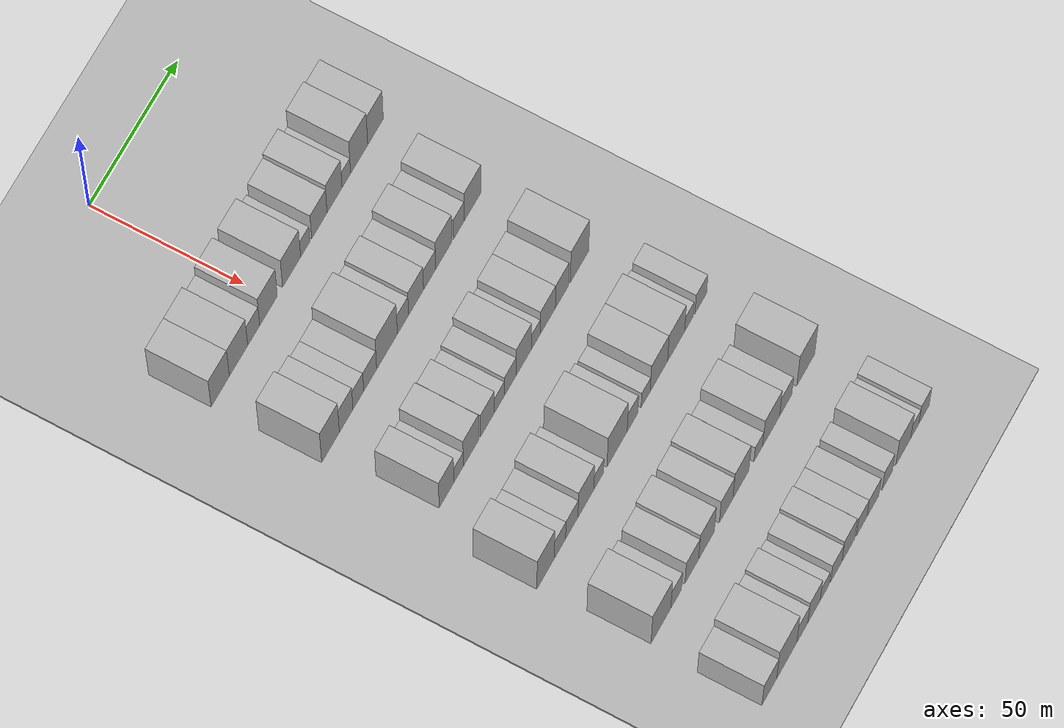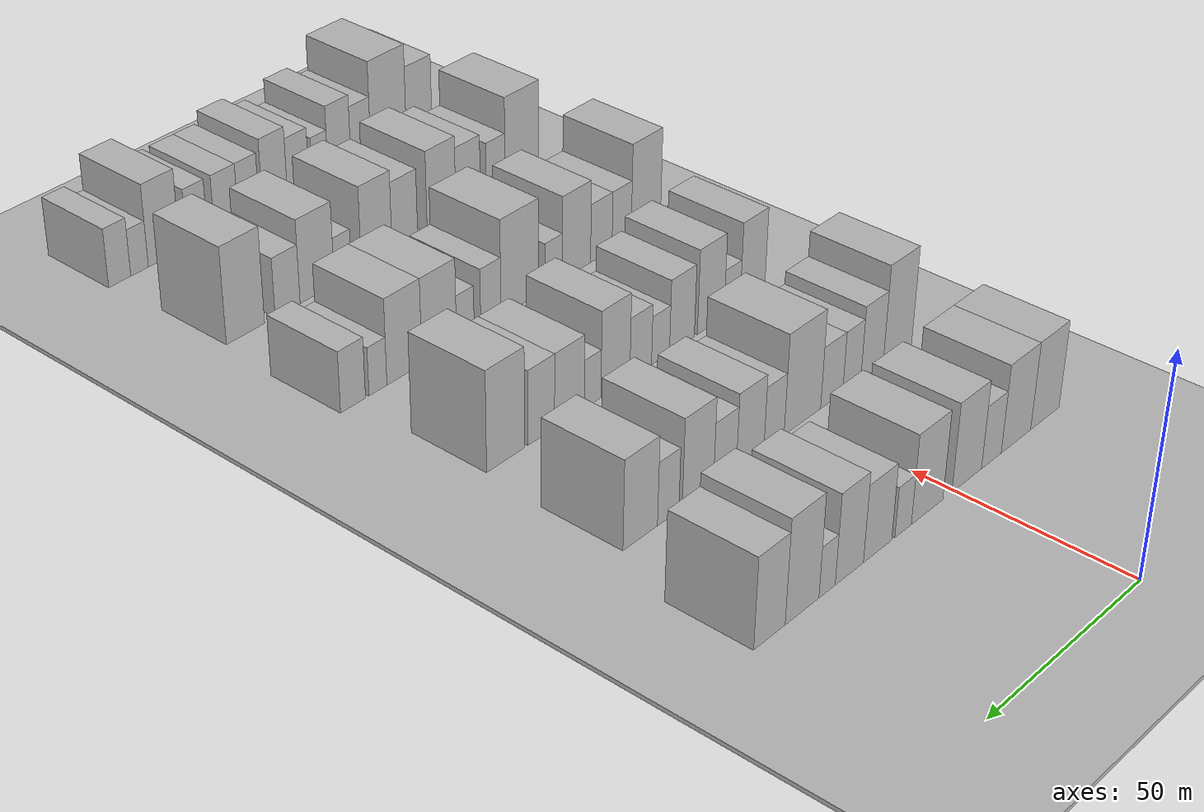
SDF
<sdf version="1.6">
 <world name="default">
  <include><name>ground_plane_1</name><uri>model://HANNAS_ground_plane</uri></include>
  <include>
   <name>ground_plane_2</name>
   <uri>model://HANNAS_ground_plane</uri>
   <pose>100 0 0  0 0 0</pose>
  </include>
  <model name="building_62">
   <static>1</static>
   <pose>50.0000 -31.1207 0 0.000000 0.000000 0.000000</pose>
   <link name="link">
    <pose>0 0 10.50 0 0 0</pose>
    <collision name="collision"><geometry><box><size>20.0000 10.3166 21.0000</size></box></geometry></collision>
    <visual name="visual">
     <cast_shadows>0</cast_shadows>
     <geometry><box><size>20.0000 10.3166 21.0000</size></box></geometry>
     <material>
      <script>
       <uri>model://HANNAS_wall/materials/scripts</uri>
       <uri>model://HANNAS_wall/materials/textures</uri>
       <name>vrc/HANNAS_wall</name>
      </script>
     </material>
    </visual>
   </link>
  </model>
  <model name="building_63">
   <static>1</static>
   <pose>50.0000 -20.7606 0 0.000000 0.000000 0.000000</pose>
   <link name="link">
    <pose>0 0 10.50 0 0 0</pose>
    <collision name="collision"><geometry><box><size>20.0000 10.4037 21.0000</size></box></geometry></collision>
    <visual name="visual">
     <cast_shadows>0</cast_shadows>
     <geometry><box><size>20.0000 10.4037 21.0000</size></box></geometry>
     <material>
      <script>
       <uri>model://HANNAS_wall/materials/scripts</uri>
       <uri>model://HANNAS_wall/materials/textures</uri>
       <name>vrc/HANNAS_wall</name>
      </script>
     </material>
    </visual>
   </link>
  </model>
  <model name="building_64">
   <static>1</static>
   <pose>50.0000 -12.1446 0 0.000000 0.000000 0.000000</pose>
   <link name="link">
    <pose>0 0 7.50 0 0 0</pose>
    <collision name="collision"><geometry><box><size>20.0000 6.8282 15.0000</size></box></geometry></collision>
    <visual name="visual">
     <cast_shadows>0</cast_shadows>
     <geometry><box><size>20.0000 6.8282 15.0000</size></box></geometry>
     <material>
      <script>
       <uri>model://HANNAS_wall/materials/scripts</uri>
       <uri>model://HANNAS_wall/materials/textures</uri>
       <name>vrc/HANNAS_wall</name>
      </script>
     </material>
    </visual>
   </link>
  </model>
  <model name="building_65">
   <static>1</static>
   <pose>50.0000 -3.7148 0 0.000000 0.000000 0.000000</pose>
   <link name="link">
    <pose>0 0 10.50 0 0 0</pose>
    <collision name="collision"><geometry><box><size>20.0000 10.0314 21.0000</size></box></geometry></collision>
    <visual name="visual">
     <cast_shadows>0</cast_shadows>
     <geometry><box><size>20.0000 10.0314 21.0000</size></box></geometry>
     <material>
      <script>
       <uri>model://HANNAS_wall/materials/scripts</uri>
       <uri>model://HANNAS_wall/materials/textures</uri>
       <name>vrc/HANNAS_wall</name>
      </script>
     </material>
    </visual>
   </link>
  </model>
  <model name="building_66">
   <static>1</static>
   <pose>50.0000 9.4654 0 0.000000 0.000000 0.000000</pose>
   <link name="link">
    <pose>0 0 10.50 0 0 0</pose>
    <collision name="collision"><geometry><box><size>20.0000 10.3291 21.0000</size></box></geometry></collision>
    <visual name="visual">
     <cast_shadows>0</cast_shadows>
     <geometry><box><size>20.0000 10.3291 21.0000</size></box></geometry>
     <material>
      <script>
       <uri>model://HANNAS_wall/materials/scripts</uri>
       <uri>model://HANNAS_wall/materials/textures</uri>
       <name>vrc/HANNAS_wall</name>
      </script>
     </material>
    </visual>
   </link>
  </model>
  <model name="building_67">
   <static>1</static>
   <pose>50.0000 17.2839 0 0.000000 0.000000 0.000000</pose>
   <link name="link">
    <pose>0 0 6.00 0 0 0</pose>
    <collision name="collision"><geometry><box><size>20.0000 5.3078 12.0000</size></box></geometry></collision>
    <visual name="visual">
     <cast_shadows>0</cast_shadows>
     <geometry><box><size>20.0000 5.3078 12.0000</size></box></geometry>
     <material>
      <script>
       <uri>model://HANNAS_wall/materials/scripts</uri>
       <uri>model://HANNAS_wall/materials/textures</uri>
       <name>vrc/HANNAS_wall</name>
      </script>
     </material>
    </visual>
   </link>
  </model>
  <model name="building_68">
   <static>1</static>
   <pose>50.0000 25.3735 0 0.000000 0.000000 0.000000</pose>
   <link name="link">
    <pose>0 0 9.00 0 0 0</pose>
    <collision name="collision"><geometry><box><size>20.0000 8.8715 18.0000</size></box></geometry></collision>
    <visual name="visual">
     <cast_shadows>0</cast_shadows>
     <geometry><box><size>20.0000 8.8715 18.0000</size></box></geometry>
     <material>
      <script>
       <uri>model://HANNAS_wall/materials/scripts</uri>
       <uri>model://HANNAS_wall/materials/textures</uri>
       <name>vrc/HANNAS_wall</name>
      </script>
     </material>
    </visual>
   </link>
  </model>
  <model name="building_69">
   <static>1</static>
   <pose>50.0000 34.1304 0 0.000000 0.000000 0.000000</pose>
   <link name="link">
    <pose>0 0 10.50 0 0 0</pose>
    <collision name="collision"><geometry><box><size>20.0000 8.6423 21.0000</size></box></geometry></collision>
    <visual name="visual">
     <cast_shadows>0</cast_shadows>
     <geometry><box><size>20.0000 8.6423 21.0000</size></box></geometry>
     <material>
      <script>
       <uri>model://HANNAS_wall/materials/scripts</uri>
       <uri>model://HANNAS_wall/materials/textures</uri>
       <name>vrc/HANNAS_wall</name>
      </script>
     </material>
    </visual>
   </link>
  </model>
  <model name="building_70">
   <static>1</static>
   <pose>50.0000 40.9056 0 0.000000 0.000000 0.000000</pose>
   <link name="link">
    <pose>0 0 6.00 0 0 0</pose>
    <collision name="collision"><geometry><box><size>20.0000 4.9082 12.0000</size></box></geometry></collision>
    <visual name="visual">
     <cast_shadows>0</cast_shadows>
     <geometry><box><size>20.0000 4.9082 12.0000</size></box></geometry>
     <material>
      <script>
       <uri>model://HANNAS_wall/materials/scripts</uri>
       <uri>model://HANNAS_wall/materials/textures</uri>
       <name>vrc/HANNAS_wall</name>
      </script>
     </material>
    </visual>
   </link>
  </model>
  <model name="building_71">
   <static>1</static>
   <pose>50.0000 48.3373 0 0.000000 0.000000 0.000000</pose>
   <link name="link">
    <pose>0 0 12.00 0 0 0</pose>
    <collision name="collision"><geometry><box><size>20.0000 9.9551 24.0000</size></box></geometry></collision>
    <visual name="visual">
     <cast_shadows>0</cast_shadows>
     <geometry><box><size>20.0000 9.9551 24.0000</size></box></geometry>
     <material>
      <script>
       <uri>model://HANNAS_wall/materials/scripts</uri>
       <uri>model://HANNAS_wall/materials/textures</uri>
       <name>vrc/HANNAS_wall</name>
      </script>
     </material>
    </visual>
   </link>
  </model>
  <model name="building_72">
   <static>1</static>
   <pose>50.0000 57.8455 0 0.000000 0.000000 0.000000</pose>
   <link name="link">
    <pose>0 0 10.50 0 0 0</pose>
    <collision name="collision"><geometry><box><size>20.0000 9.0613 21.0000</size></box></geometry></collision>
    <visual name="visual">
     <cast_shadows>0</cast_shadows>
     <geometry><box><size>20.0000 9.0613 21.0000</size></box></geometry>
     <material>
      <script>
       <uri>model://HANNAS_wall/materials/scripts</uri>
       <uri>model://HANNAS_wall/materials/textures</uri>
       <name>vrc/HANNAS_wall</name>
      </script>
     </material>
    </visual>
   </link>
  </model>
  <model name="building_189">
   <static>1</static>
   <pose>85.0000 -30.8297 0 0.000000 0.000000 0.000000</pose>
   <link name="link">
    <pose>0 0 12.00 0 0 0</pose>
    <collision name="collision"><geometry><box><size>20.0000 10.0494 24.0000</size></box></geometry></collision>
    <visual name="visual">
     <cast_shadows>0</cast_shadows>
     <geometry><box><size>20.0000 10.0494 24.0000</size></box></geometry>
     <material>
      <script>
       <uri>model://HANNAS_wall/materials/scripts</uri>
       <uri>model://HANNAS_wall/materials/textures</uri>
       <name>vrc/HANNAS_wall</name>
      </script>
     </material>
    </visual>
   </link>
  </model>
  <model name="building_190">
   <static>1</static>
   <pose>85.0000 -21.9327 0 0.000000 0.000000 0.000000</pose>
   <link name="link">
    <pose>0 0 9.00 0 0 0</pose>
    <collision name="collision"><geometry><box><size>20.0000 7.7446 18.0000</size></box></geometry></collision>
    <visual name="visual">
     <cast_shadows>0</cast_shadows>
     <geometry><box><size>20.0000 7.7446 18.0000</size></box></geometry>
     <material>
      <script>
       <uri>model://HANNAS_wall/materials/scripts</uri>
       <uri>model://HANNAS_wall/materials/textures</uri>
       <name>vrc/HANNAS_wall</name>
      </script>
     </material>
    </visual>
   </link>
  </model>
  <model name="building_191">
   <static>1</static>
   <pose>85.0000 -14.9793 0 0.000000 0.000000 0.000000</pose>
   <link name="link">
    <pose>0 0 7.50 0 0 0</pose>
    <collision name="collision"><geometry><box><size>20.0000 6.1621 15.0000</size></box></geometry></collision>
    <visual name="visual">
     <cast_shadows>0</cast_shadows>
     <geometry><box><size>20.0000 6.1621 15.0000</size></box></geometry>
     <material>
      <script>
       <uri>model://HANNAS_wall/materials/scripts</uri>
       <uri>model://HANNAS_wall/materials/textures</uri>
       <name>vrc/HANNAS_wall</name>
      </script>
     </material>
    </visual>
   </link>
  </model>
  <model name="building_192">
   <static>1</static>
   <pose>85.0000 -8.1989 0 0.000000 0.000000 0.000000</pose>
   <link name="link">
    <pose>0 0 7.50 0 0 0</pose>
    <collision name="collision"><geometry><box><size>20.0000 7.3987 15.0000</size></box></geometry></collision>
    <visual name="visual">
     <cast_shadows>0</cast_shadows>
     <geometry><box><size>20.0000 7.3987 15.0000</size></box></geometry>
     <material>
      <script>
       <uri>model://HANNAS_wall/materials/scripts</uri>
       <uri>model://HANNAS_wall/materials/textures</uri>
       <name>vrc/HANNAS_wall</name>
      </script>
     </material>
    </visual>
   </link>
  </model>
  <model name="building_193">
   <static>1</static>
   <pose>85.0000 1.4661 0 0.000000 0.000000 0.000000</pose>
   <link name="link">
    <pose>0 0 12.00 0 0 0</pose>
    <collision name="collision"><geometry><box><size>20.0000 11.9313 24.0000</size></box></geometry></collision>
    <visual name="visual">
     <cast_shadows>0</cast_shadows>
     <geometry><box><size>20.0000 11.9313 24.0000</size></box></geometry>
     <material>
      <script>
       <uri>model://HANNAS_wall/materials/scripts</uri>
       <uri>model://HANNAS_wall/materials/textures</uri>
       <name>vrc/HANNAS_wall</name>
      </script>
     </material>
    </visual>
   </link>
  </model>
  <model name="building_194">
   <static>1</static>
   <pose>85.0000 10.6550 0 0.000000 0.000000 0.000000</pose>
   <link name="link">
    <pose>0 0 7.50 0 0 0</pose>
    <collision name="collision"><geometry><box><size>20.0000 6.4465 15.0000</size></box></geometry></collision>
    <visual name="visual">
     <cast_shadows>0</cast_shadows>
     <geometry><box><size>20.0000 6.4465 15.0000</size></box></geometry>
     <material>
      <script>
       <uri>model://HANNAS_wall/materials/scripts</uri>
       <uri>model://HANNAS_wall/materials/textures</uri>
       <name>vrc/HANNAS_wall</name>
      </script>
     </material>
    </visual>
   </link>
  </model>
  <model name="building_195">
   <static>1</static>
   <pose>85.0000 18.1993 0 0.000000 0.000000 0.000000</pose>
   <link name="link">
    <pose>0 0 9.00 0 0 0</pose>
    <collision name="collision"><geometry><box><size>20.0000 8.6422 18.0000</size></box></geometry></collision>
    <visual name="visual">
     <cast_shadows>0</cast_shadows>
     <geometry><box><size>20.0000 8.6422 18.0000</size></box></geometry>
     <material>
      <script>
       <uri>model://HANNAS_wall/materials/scripts</uri>
       <uri>model://HANNAS_wall/materials/textures</uri>
       <name>vrc/HANNAS_wall</name>
      </script>
     </material>
    </visual>
   </link>
  </model>
  <model name="building_196">
   <static>1</static>
   <pose>85.0000 26.0441 0 0.000000 0.000000 0.000000</pose>
   <link name="link">
    <pose>0 0 7.50 0 0 0</pose>
    <collision name="collision"><geometry><box><size>20.0000 7.0473 15.0000</size></box></geometry></collision>
    <visual name="visual">
     <cast_shadows>0</cast_shadows>
     <geometry><box><size>20.0000 7.0473 15.0000</size></box></geometry>
     <material>
      <script>
       <uri>model://HANNAS_wall/materials/scripts</uri>
       <uri>model://HANNAS_wall/materials/textures</uri>
       <name>vrc/HANNAS_wall</name>
      </script>
     </material>
    </visual>
   </link>
  </model>
  <model name="building_197">
   <static>1</static>
   <pose>85.0000 34.2518 0 0.000000 0.000000 0.000000</pose>
   <link name="link">
    <pose>0 0 10.50 0 0 0</pose>
    <collision name="collision"><geometry><box><size>20.0000 9.3681 21.0000</size></box></geometry></collision>
    <visual name="visual">
     <cast_shadows>0</cast_shadows>
     <geometry><box><size>20.0000 9.3681 21.0000</size></box></geometry>
     <material>
      <script>
       <uri>model://HANNAS_wall/materials/scripts</uri>
       <uri>model://HANNAS_wall/materials/textures</uri>
       <name>vrc/HANNAS_wall</name>
      </script>
     </material>
    </visual>
   </link>
  </model>
  <model name="building_198">
   <static>1</static>
   <pose>85.0000 43.0728 0 0.000000 0.000000 0.000000</pose>
   <link name="link">
    <pose>0 0 7.50 0 0 0</pose>
    <collision name="collision"><geometry><box><size>20.0000 6.2740 15.0000</size></box></geometry></collision>
    <visual name="visual">
     <cast_shadows>0</cast_shadows>
     <geometry><box><size>20.0000 6.2740 15.0000</size></box></geometry>
     <material>
      <script>
       <uri>model://HANNAS_wall/materials/scripts</uri>
       <uri>model://HANNAS_wall/materials/textures</uri>
       <name>vrc/HANNAS_wall</name>
      </script>
     </material>
    </visual>
   </link>
  </model>
  <model name="building_199">
   <static>1</static>
   <pose>85.0000 51.1776 0 0.000000 0.000000 0.000000</pose>
   <link name="link">
    <pose>0 0 10.50 0 0 0</pose>
    <collision name="collision"><geometry><box><size>20.0000 9.9356 21.0000</size></box></geometry></collision>
    <visual name="visual">
     <cast_shadows>0</cast_shadows>
     <geometry><box><size>20.0000 9.9356 21.0000</size></box></geometry>
     <material>
      <script>
       <uri>model://HANNAS_wall/materials/scripts</uri>
       <uri>model://HANNAS_wall/materials/textures</uri>
       <name>vrc/HANNAS_wall</name>
      </script>
     </material>
    </visual>
   </link>
  </model>
  <model name="building_308">
   <static>1</static>
   <pose>120.0000 -27.6909 0 0.000000 0.000000 0.000000</pose>
   <link name="link">
    <pose>0 0 10.50 0 0 0</pose>
    <collision name="collision"><geometry><box><size>20.0000 8.4739 21.0000</size></box></geometry></collision>
    <visual name="visual">
     <cast_shadows>0</cast_shadows>
     <geometry><box><size>20.0000 8.4739 21.0000</size></box></geometry>
     <material>
      <script>
       <uri>model://HANNAS_wall/materials/scripts</uri>
       <uri>model://HANNAS_wall/materials/textures</uri>
       <name>vrc/HANNAS_wall</name>
      </script>
     </material>
    </visual>
   </link>
  </model>
  <model name="building_309">
   <static>1</static>
   <pose>120.0000 -20.7469 0 0.000000 0.000000 0.000000</pose>
   <link name="link">
    <pose>0 0 6.00 0 0 0</pose>
    <collision name="collision"><geometry><box><size>20.0000 5.4141 12.0000</size></box></geometry></collision>
    <visual name="visual">
     <cast_shadows>0</cast_shadows>
     <geometry><box><size>20.0000 5.4141 12.0000</size></box></geometry>
     <material>
      <script>
       <uri>model://HANNAS_wall/materials/scripts</uri>
       <uri>model://HANNAS_wall/materials/textures</uri>
       <name>vrc/HANNAS_wall</name>
      </script>
     </material>
    </visual>
   </link>
  </model>
  <model name="building_310">
   <static>1</static>
   <pose>120.0000 -13.6113 0 0.000000 0.000000 0.000000</pose>
   <link name="link">
    <pose>0 0 10.50 0 0 0</pose>
    <collision name="collision"><geometry><box><size>20.0000 8.8572 21.0000</size></box></geometry></collision>
    <visual name="visual">
     <cast_shadows>0</cast_shadows>
     <geometry><box><size>20.0000 8.8572 21.0000</size></box></geometry>
     <material>
      <script>
       <uri>model://HANNAS_wall/materials/scripts</uri>
       <uri>model://HANNAS_wall/materials/textures</uri>
       <name>vrc/HANNAS_wall</name>
      </script>
     </material>
    </visual>
   </link>
  </model>
  <model name="building_311">
   <static>1</static>
   <pose>120.0000 -4.1378 0 0.000000 0.000000 0.000000</pose>
   <link name="link">
    <pose>0 0 9.00 0 0 0</pose>
    <collision name="collision"><geometry><box><size>20.0000 8.0897 18.0000</size></box></geometry></collision>
    <visual name="visual">
     <cast_shadows>0</cast_shadows>
     <geometry><box><size>20.0000 8.0897 18.0000</size></box></geometry>
     <material>
      <script>
       <uri>model://HANNAS_wall/materials/scripts</uri>
       <uri>model://HANNAS_wall/materials/textures</uri>
       <name>vrc/HANNAS_wall</name>
      </script>
     </material>
    </visual>
   </link>
  </model>
  <model name="building_312">
   <static>1</static>
   <pose>120.0000 2.7823 0 0.000000 0.000000 0.000000</pose>
   <link name="link">
    <pose>0 0 6.00 0 0 0</pose>
    <collision name="collision"><geometry><box><size>20.0000 5.7506 12.0000</size></box></geometry></collision>
    <visual name="visual">
     <cast_shadows>0</cast_shadows>
     <geometry><box><size>20.0000 5.7506 12.0000</size></box></geometry>
     <material>
      <script>
       <uri>model://HANNAS_wall/materials/scripts</uri>
       <uri>model://HANNAS_wall/materials/textures</uri>
       <name>vrc/HANNAS_wall</name>
      </script>
     </material>
    </visual>
   </link>
  </model>
  <model name="building_313">
   <static>1</static>
   <pose>120.0000 9.0841 0 0.000000 0.000000 0.000000</pose>
   <link name="link">
    <pose>0 0 7.50 0 0 0</pose>
    <collision name="collision"><geometry><box><size>20.0000 6.8529 15.0000</size></box></geometry></collision>
    <visual name="visual">
     <cast_shadows>0</cast_shadows>
     <geometry><box><size>20.0000 6.8529 15.0000</size></box></geometry>
     <material>
      <script>
       <uri>model://HANNAS_wall/materials/scripts</uri>
       <uri>model://HANNAS_wall/materials/textures</uri>
       <name>vrc/HANNAS_wall</name>
      </script>
     </material>
    </visual>
   </link>
  </model>
  <model name="building_314">
   <static>1</static>
   <pose>120.0000 16.9854 0 0.000000 0.000000 0.000000</pose>
   <link name="link">
    <pose>0 0 10.50 0 0 0</pose>
    <collision name="collision"><geometry><box><size>20.0000 8.9498 21.0000</size></box></geometry></collision>
    <visual name="visual">
     <cast_shadows>0</cast_shadows>
     <geometry><box><size>20.0000 8.9498 21.0000</size></box></geometry>
     <material>
      <script>
       <uri>model://HANNAS_wall/materials/scripts</uri>
       <uri>model://HANNAS_wall/materials/textures</uri>
       <name>vrc/HANNAS_wall</name>
      </script>
     </material>
    </visual>
   </link>
  </model>
  <model name="building_315">
   <static>1</static>
   <pose>120.0000 23.9823 0 0.000000 0.000000 0.000000</pose>
   <link name="link">
    <pose>0 0 6.00 0 0 0</pose>
    <collision name="collision"><geometry><box><size>20.0000 5.0441 12.0000</size></box></geometry></collision>
    <visual name="visual">
     <cast_shadows>0</cast_shadows>
     <geometry><box><size>20.0000 5.0441 12.0000</size></box></geometry>
     <material>
      <script>
       <uri>model://HANNAS_wall/materials/scripts</uri>
       <uri>model://HANNAS_wall/materials/textures</uri>
       <name>vrc/HANNAS_wall</name>
      </script>
     </material>
    </visual>
   </link>
  </model>
  <model name="building_316">
   <static>1</static>
   <pose>120.0000 30.9605 0 0.000000 0.000000 0.000000</pose>
   <link name="link">
    <pose>0 0 9.00 0 0 0</pose>
    <collision name="collision"><geometry><box><size>20.0000 8.9124 18.0000</size></box></geometry></collision>
    <visual name="visual">
     <cast_shadows>0</cast_shadows>
     <geometry><box><size>20.0000 8.9124 18.0000</size></box></geometry>
     <material>
      <script>
       <uri>model://HANNAS_wall/materials/scripts</uri>
       <uri>model://HANNAS_wall/materials/textures</uri>
       <name>vrc/HANNAS_wall</name>
      </script>
     </material>
    </visual>
   </link>
  </model>
  <model name="building_317">
   <static>1</static>
   <pose>120.0000 39.2919 0 0.000000 0.000000 0.000000</pose>
   <link name="link">
    <pose>0 0 9.00 0 0 0</pose>
    <collision name="collision"><geometry><box><size>20.0000 7.7504 18.0000</size></box></geometry></collision>
    <visual name="visual">
     <cast_shadows>0</cast_shadows>
     <geometry><box><size>20.0000 7.7504 18.0000</size></box></geometry>
     <material>
      <script>
       <uri>model://HANNAS_wall/materials/scripts</uri>
       <uri>model://HANNAS_wall/materials/textures</uri>
       <name>vrc/HANNAS_wall</name>
      </script>
     </material>
    </visual>
   </link>
  </model>
  <model name="building_318">
   <static>1</static>
   <pose>120.0000 49.5906 0 0.000000 0.000000 0.000000</pose>
   <link name="link">
    <pose>0 0 12.00 0 0 0</pose>
    <collision name="collision"><geometry><box><size>20.0000 10.8471 24.0000</size></box></geometry></collision>
    <visual name="visual">
     <cast_shadows>0</cast_shadows>
     <geometry><box><size>20.0000 10.8471 24.0000</size></box></geometry>
     <material>
      <script>
       <uri>model://HANNAS_wall/materials/scripts</uri>
       <uri>model://HANNAS_wall/materials/textures</uri>
       <name>vrc/HANNAS_wall</name>
      </script>
     </material>
    </visual>
   </link>
  </model>
  <model name="building_436">
   <static>1</static>
   <pose>155.0000 -34.6547 0 0.000000 0.000000 0.000000</pose>
   <link name="link">
    <pose>0 0 12.00 0 0 0</pose>
    <collision name="collision"><geometry><box><size>20.0000 10.0847 24.0000</size></box></geometry></collision>
    <visual name="visual">
     <cast_shadows>0</cast_shadows>
     <geometry><box><size>20.0000 10.0847 24.0000</size></box></geometry>
     <material>
      <script>
       <uri>model://HANNAS_wall/materials/scripts</uri>
       <uri>model://HANNAS_wall/materials/textures</uri>
       <name>vrc/HANNAS_wall</name>
      </script>
     </material>
    </visual>
   </link>
  </model>
  <model name="building_437">
   <static>1</static>
   <pose>155.0000 -26.3721 0 0.000000 0.000000 0.000000</pose>
   <link name="link">
    <pose>0 0 7.50 0 0 0</pose>
    <collision name="collision"><geometry><box><size>20.0000 6.4805 15.0000</size></box></geometry></collision>
    <visual name="visual">
     <cast_shadows>0</cast_shadows>
     <geometry><box><size>20.0000 6.4805 15.0000</size></box></geometry>
     <material>
      <script>
       <uri>model://HANNAS_wall/materials/scripts</uri>
       <uri>model://HANNAS_wall/materials/textures</uri>
       <name>vrc/HANNAS_wall</name>
      </script>
     </material>
    </visual>
   </link>
  </model>
  <model name="building_438">
   <static>1</static>
   <pose>155.0000 -19.5611 0 0.000000 0.000000 0.000000</pose>
   <link name="link">
    <pose>0 0 7.50 0 0 0</pose>
    <collision name="collision"><geometry><box><size>20.0000 7.1415 15.0000</size></box></geometry></collision>
    <visual name="visual">
     <cast_shadows>0</cast_shadows>
     <geometry><box><size>20.0000 7.1415 15.0000</size></box></geometry>
     <material>
      <script>
       <uri>model://HANNAS_wall/materials/scripts</uri>
       <uri>model://HANNAS_wall/materials/textures</uri>
       <name>vrc/HANNAS_wall</name>
      </script>
     </material>
    </visual>
   </link>
  </model>
  <model name="building_439">
   <static>1</static>
   <pose>155.0000 -11.3887 0 0.000000 0.000000 0.000000</pose>
   <link name="link">
    <pose>0 0 10.50 0 0 0</pose>
    <collision name="collision"><geometry><box><size>20.0000 9.2032 21.0000</size></box></geometry></collision>
    <visual name="visual">
     <cast_shadows>0</cast_shadows>
     <geometry><box><size>20.0000 9.2032 21.0000</size></box></geometry>
     <material>
      <script>
       <uri>model://HANNAS_wall/materials/scripts</uri>
       <uri>model://HANNAS_wall/materials/textures</uri>
       <name>vrc/HANNAS_wall</name>
      </script>
     </material>
    </visual>
   </link>
  </model>
  <model name="building_440">
   <static>1</static>
   <pose>155.0000 -3.9426 0 0.000000 0.000000 0.000000</pose>
   <link name="link">
    <pose>0 0 6.00 0 0 0</pose>
    <collision name="collision"><geometry><box><size>20.0000 5.6891 12.0000</size></box></geometry></collision>
    <visual name="visual">
     <cast_shadows>0</cast_shadows>
     <geometry><box><size>20.0000 5.6891 12.0000</size></box></geometry>
     <material>
      <script>
       <uri>model://HANNAS_wall/materials/scripts</uri>
       <uri>model://HANNAS_wall/materials/textures</uri>
       <name>vrc/HANNAS_wall</name>
      </script>
     </material>
    </visual>
   </link>
  </model>
  <model name="building_441">
   <static>1</static>
   <pose>155.0000 6.7967 0 0.000000 0.000000 0.000000</pose>
   <link name="link">
    <pose>0 0 12.00 0 0 0</pose>
    <collision name="collision"><geometry><box><size>20.0000 11.7895 24.0000</size></box></geometry></collision>
    <visual name="visual">
     <cast_shadows>0</cast_shadows>
     <geometry><box><size>20.0000 11.7895 24.0000</size></box></geometry>
     <material>
      <script>
       <uri>model://HANNAS_wall/materials/scripts</uri>
       <uri>model://HANNAS_wall/materials/textures</uri>
       <name>vrc/HANNAS_wall</name>
      </script>
     </material>
    </visual>
   </link>
  </model>
  <model name="building_442">
   <static>1</static>
   <pose>155.0000 15.7808 0 0.000000 0.000000 0.000000</pose>
   <link name="link">
    <pose>0 0 7.50 0 0 0</pose>
    <collision name="collision"><geometry><box><size>20.0000 6.1787 15.0000</size></box></geometry></collision>
    <visual name="visual">
     <cast_shadows>0</cast_shadows>
     <geometry><box><size>20.0000 6.1787 15.0000</size></box></geometry>
     <material>
      <script>
       <uri>model://HANNAS_wall/materials/scripts</uri>
       <uri>model://HANNAS_wall/materials/textures</uri>
       <name>vrc/HANNAS_wall</name>
      </script>
     </material>
    </visual>
   </link>
  </model>
  <model name="building_443">
   <static>1</static>
   <pose>155.0000 23.5342 0 0.000000 0.000000 0.000000</pose>
   <link name="link">
    <pose>0 0 6.00 0 0 0</pose>
    <collision name="collision"><geometry><box><size>20.0000 5.3281 12.0000</size></box></geometry></collision>
    <visual name="visual">
     <cast_shadows>0</cast_shadows>
     <geometry><box><size>20.0000 5.3281 12.0000</size></box></geometry>
     <material>
      <script>
       <uri>model://HANNAS_wall/materials/scripts</uri>
       <uri>model://HANNAS_wall/materials/textures</uri>
       <name>vrc/HANNAS_wall</name>
      </script>
     </material>
    </visual>
   </link>
  </model>
  <model name="building_444">
   <static>1</static>
   <pose>155.0000 31.3321 0 0.000000 0.000000 0.000000</pose>
   <link name="link">
    <pose>0 0 10.50 0 0 0</pose>
    <collision name="collision"><geometry><box><size>20.0000 10.2677 21.0000</size></box></geometry></collision>
    <visual name="visual">
     <cast_shadows>0</cast_shadows>
     <geometry><box><size>20.0000 10.2677 21.0000</size></box></geometry>
     <material>
      <script>
       <uri>model://HANNAS_wall/materials/scripts</uri>
       <uri>model://HANNAS_wall/materials/textures</uri>
       <name>vrc/HANNAS_wall</name>
      </script>
     </material>
    </visual>
   </link>
  </model>
  <model name="building_445">
   <static>1</static>
   <pose>155.0000 41.5204 0 0.000000 0.000000 0.000000</pose>
   <link name="link">
    <pose>0 0 10.50 0 0 0</pose>
    <collision name="collision"><geometry><box><size>20.0000 10.1089 21.0000</size></box></geometry></collision>
    <visual name="visual">
     <cast_shadows>0</cast_shadows>
     <geometry><box><size>20.0000 10.1089 21.0000</size></box></geometry>
     <material>
      <script>
       <uri>model://HANNAS_wall/materials/scripts</uri>
       <uri>model://HANNAS_wall/materials/textures</uri>
       <name>vrc/HANNAS_wall</name>
      </script>
     </material>
    </visual>
   </link>
  </model>
  <model name="building_446">
   <static>1</static>
   <pose>155.0000 49.1126 0 0.000000 0.000000 0.000000</pose>
   <link name="link">
    <pose>0 0 6.00 0 0 0</pose>
    <collision name="collision"><geometry><box><size>20.0000 5.0754 12.0000</size></box></geometry></collision>
    <visual name="visual">
     <cast_shadows>0</cast_shadows>
     <geometry><box><size>20.0000 5.0754 12.0000</size></box></geometry>
     <material>
      <script>
       <uri>model://HANNAS_wall/materials/scripts</uri>
       <uri>model://HANNAS_wall/materials/textures</uri>
       <name>vrc/HANNAS_wall</name>
      </script>
     </material>
    </visual>
   </link>
  </model>
  <model name="building_447">
   <static>1</static>
   <pose>155.0000 56.1278 0 0.000000 0.000000 0.000000</pose>
   <link name="link">
    <pose>0 0 7.50 0 0 0</pose>
    <collision name="collision"><geometry><box><size>20.0000 6.9552 15.0000</size></box></geometry></collision>
    <visual name="visual">
     <cast_shadows>0</cast_shadows>
     <geometry><box><size>20.0000 6.9552 15.0000</size></box></geometry>
     <material>
      <script>
       <uri>model://HANNAS_wall/materials/scripts</uri>
       <uri>model://HANNAS_wall/materials/textures</uri>
       <name>vrc/HANNAS_wall</name>
      </script>
     </material>
    </visual>
   </link>
  </model>
  <model name="building_563">
   <static>1</static>
   <pose>190.0000 -32.7372 0 0.000000 0.000000 0.000000</pose>
   <link name="link">
    <pose>0 0 12.00 0 0 0</pose>
    <collision name="collision"><geometry><box><size>20.0000 11.4989 24.0000</size></box></geometry></collision>
    <visual name="visual">
     <cast_shadows>0</cast_shadows>
     <geometry><box><size>20.0000 11.4989 24.0000</size></box></geometry>
     <material>
      <script>
       <uri>model://HANNAS_wall/materials/scripts</uri>
       <uri>model://HANNAS_wall/materials/textures</uri>
       <name>vrc/HANNAS_wall</name>
      </script>
     </material>
    </visual>
   </link>
  </model>
  <model name="building_564">
   <static>1</static>
   <pose>190.0000 -23.8855 0 0.000000 0.000000 0.000000</pose>
   <link name="link">
    <pose>0 0 7.50 0 0 0</pose>
    <collision name="collision"><geometry><box><size>20.0000 6.2045 15.0000</size></box></geometry></collision>
    <visual name="visual">
     <cast_shadows>0</cast_shadows>
     <geometry><box><size>20.0000 6.2045 15.0000</size></box></geometry>
     <material>
      <script>
       <uri>model://HANNAS_wall/materials/scripts</uri>
       <uri>model://HANNAS_wall/materials/textures</uri>
       <name>vrc/HANNAS_wall</name>
      </script>
     </material>
    </visual>
   </link>
  </model>
  <model name="building_565">
   <static>1</static>
   <pose>190.0000 -14.7822 0 0.000000 0.000000 0.000000</pose>
   <link name="link">
    <pose>0 0 9.00 0 0 0</pose>
    <collision name="collision"><geometry><box><size>20.0000 8.0021 18.0000</size></box></geometry></collision>
    <visual name="visual">
     <cast_shadows>0</cast_shadows>
     <geometry><box><size>20.0000 8.0021 18.0000</size></box></geometry>
     <material>
      <script>
       <uri>model://HANNAS_wall/materials/scripts</uri>
       <uri>model://HANNAS_wall/materials/textures</uri>
       <name>vrc/HANNAS_wall</name>
      </script>
     </material>
    </visual>
   </link>
  </model>
  <model name="building_566">
   <static>1</static>
   <pose>190.0000 -6.1752 0 0.000000 0.000000 0.000000</pose>
   <link name="link">
    <pose>0 0 10.50 0 0 0</pose>
    <collision name="collision"><geometry><box><size>20.0000 9.2118 21.0000</size></box></geometry></collision>
    <visual name="visual">
     <cast_shadows>0</cast_shadows>
     <geometry><box><size>20.0000 9.2118 21.0000</size></box></geometry>
     <material>
      <script>
       <uri>model://HANNAS_wall/materials/scripts</uri>
       <uri>model://HANNAS_wall/materials/textures</uri>
       <name>vrc/HANNAS_wall</name>
      </script>
     </material>
    </visual>
   </link>
  </model>
  <model name="building_567">
   <static>1</static>
   <pose>190.0000 5.4253 0 0.000000 0.000000 0.000000</pose>
   <link name="link">
    <pose>0 0 9.00 0 0 0</pose>
    <collision name="collision"><geometry><box><size>20.0000 7.9892 18.0000</size></box></geometry></collision>
    <visual name="visual">
     <cast_shadows>0</cast_shadows>
     <geometry><box><size>20.0000 7.9892 18.0000</size></box></geometry>
     <material>
      <script>
       <uri>model://HANNAS_wall/materials/scripts</uri>
       <uri>model://HANNAS_wall/materials/textures</uri>
       <name>vrc/HANNAS_wall</name>
      </script>
     </material>
    </visual>
   </link>
  </model>
  <model name="building_568">
   <static>1</static>
   <pose>190.0000 14.1275 0 0.000000 0.000000 0.000000</pose>
   <link name="link">
    <pose>0 0 10.50 0 0 0</pose>
    <collision name="collision"><geometry><box><size>20.0000 9.4152 21.0000</size></box></geometry></collision>
    <visual name="visual">
     <cast_shadows>0</cast_shadows>
     <geometry><box><size>20.0000 9.4152 21.0000</size></box></geometry>
     <material>
      <script>
       <uri>model://HANNAS_wall/materials/scripts</uri>
       <uri>model://HANNAS_wall/materials/textures</uri>
       <name>vrc/HANNAS_wall</name>
      </script>
     </material>
    </visual>
   </link>
  </model>
  <model name="building_569">
   <static>1</static>
   <pose>190.0000 24.3949 0 0.000000 0.000000 0.000000</pose>
   <link name="link">
    <pose>0 0 6.00 0 0 0</pose>
    <collision name="collision"><geometry><box><size>20.0000 5.1196 12.0000</size></box></geometry></collision>
    <visual name="visual">
     <cast_shadows>0</cast_shadows>
     <geometry><box><size>20.0000 5.1196 12.0000</size></box></geometry>
     <material>
      <script>
       <uri>model://HANNAS_wall/materials/scripts</uri>
       <uri>model://HANNAS_wall/materials/textures</uri>
       <name>vrc/HANNAS_wall</name>
      </script>
     </material>
    </visual>
   </link>
  </model>
  <model name="building_570">
   <static>1</static>
   <pose>190.0000 32.0069 0 0.000000 0.000000 0.000000</pose>
   <link name="link">
    <pose>0 0 10.50 0 0 0</pose>
    <collision name="collision"><geometry><box><size>20.0000 10.1043 21.0000</size></box></geometry></collision>
    <visual name="visual">
     <cast_shadows>0</cast_shadows>
     <geometry><box><size>20.0000 10.1043 21.0000</size></box></geometry>
     <material>
      <script>
       <uri>model://HANNAS_wall/materials/scripts</uri>
       <uri>model://HANNAS_wall/materials/textures</uri>
       <name>vrc/HANNAS_wall</name>
      </script>
     </material>
    </visual>
   </link>
  </model>
  <model name="building_571">
   <static>1</static>
   <pose>190.0000 40.6629 0 0.000000 0.000000 0.000000</pose>
   <link name="link">
    <pose>0 0 7.50 0 0 0</pose>
    <collision name="collision"><geometry><box><size>20.0000 7.2077 15.0000</size></box></geometry></collision>
    <visual name="visual">
     <cast_shadows>0</cast_shadows>
     <geometry><box><size>20.0000 7.2077 15.0000</size></box></geometry>
     <material>
      <script>
       <uri>model://HANNAS_wall/materials/scripts</uri>
       <uri>model://HANNAS_wall/materials/textures</uri>
       <name>vrc/HANNAS_wall</name>
      </script>
     </material>
    </visual>
   </link>
  </model>
  <model name="building_572">
   <static>1</static>
   <pose>190.0000 52.6275 0 0.000000 0.000000 0.000000</pose>
   <link name="link">
    <pose>0 0 12.00 0 0 0</pose>
    <collision name="collision"><geometry><box><size>20.0000 10.7216 24.0000</size></box></geometry></collision>
    <visual name="visual">
     <cast_shadows>0</cast_shadows>
     <geometry><box><size>20.0000 10.7216 24.0000</size></box></geometry>
     <material>
      <script>
       <uri>model://HANNAS_wall/materials/scripts</uri>
       <uri>model://HANNAS_wall/materials/textures</uri>
       <name>vrc/HANNAS_wall</name>
      </script>
     </material>
    </visual>
   </link>
  </model>
  <model name="building_692">
   <static>1</static>
   <pose>225.0000 -35.2646 0 0.000000 0.000000 0.000000</pose>
   <link name="link">
    <pose>0 0 9.00 0 0 0</pose>
    <collision name="collision"><geometry><box><size>20.0000 8.6699 18.0000</size></box></geometry></collision>
    <visual name="visual">
     <cast_shadows>0</cast_shadows>
     <geometry><box><size>20.0000 8.6699 18.0000</size></box></geometry>
     <material>
      <script>
       <uri>model://HANNAS_wall/materials/scripts</uri>
       <uri>model://HANNAS_wall/materials/textures</uri>
       <name>vrc/HANNAS_wall</name>
      </script>
     </material>
    </visual>
   </link>
  </model>
  <model name="building_693">
   <static>1</static>
   <pose>225.0000 -25.0408 0 0.000000 0.000000 0.000000</pose>
   <link name="link">
    <pose>0 0 12.00 0 0 0</pose>
    <collision name="collision"><geometry><box><size>20.0000 11.7776 24.0000</size></box></geometry></collision>
    <visual name="visual">
     <cast_shadows>0</cast_shadows>
     <geometry><box><size>20.0000 11.7776 24.0000</size></box></geometry>
     <material>
      <script>
       <uri>model://HANNAS_wall/materials/scripts</uri>
       <uri>model://HANNAS_wall/materials/textures</uri>
       <name>vrc/HANNAS_wall</name>
      </script>
     </material>
    </visual>
   </link>
  </model>
  <model name="building_694">
   <static>1</static>
   <pose>225.0000 -15.9189 0 0.000000 0.000000 0.000000</pose>
   <link name="link">
    <pose>0 0 7.50 0 0 0</pose>
    <collision name="collision"><geometry><box><size>20.0000 6.4663 15.0000</size></box></geometry></collision>
    <visual name="visual">
     <cast_shadows>0</cast_shadows>
     <geometry><box><size>20.0000 6.4663 15.0000</size></box></geometry>
     <material>
      <script>
       <uri>model://HANNAS_wall/materials/scripts</uri>
       <uri>model://HANNAS_wall/materials/textures</uri>
       <name>vrc/HANNAS_wall</name>
      </script>
     </material>
    </visual>
   </link>
  </model>
  <model name="building_695">
   <static>1</static>
   <pose>225.0000 -9.0125 0 0.000000 0.000000 0.000000</pose>
   <link name="link">
    <pose>0 0 9.00 0 0 0</pose>
    <collision name="collision"><geometry><box><size>20.0000 7.3464 18.0000</size></box></geometry></collision>
    <visual name="visual">
     <cast_shadows>0</cast_shadows>
     <geometry><box><size>20.0000 7.3464 18.0000</size></box></geometry>
     <material>
      <script>
       <uri>model://HANNAS_wall/materials/scripts</uri>
       <uri>model://HANNAS_wall/materials/textures</uri>
       <name>vrc/HANNAS_wall</name>
      </script>
     </material>
    </visual>
   </link>
  </model>
  <model name="building_696">
   <static>1</static>
   <pose>225.0000 -2.8370 0 0.000000 0.000000 0.000000</pose>
   <link name="link">
    <pose>0 0 6.00 0 0 0</pose>
    <collision name="collision"><geometry><box><size>20.0000 5.0047 12.0000</size></box></geometry></collision>
    <visual name="visual">
     <cast_shadows>0</cast_shadows>
     <geometry><box><size>20.0000 5.0047 12.0000</size></box></geometry>
     <material>
      <script>
       <uri>model://HANNAS_wall/materials/scripts</uri>
       <uri>model://HANNAS_wall/materials/textures</uri>
       <name>vrc/HANNAS_wall</name>
      </script>
     </material>
    </visual>
   </link>
  </model>
  <model name="building_697">
   <static>1</static>
   <pose>225.0000 4.0460 0 0.000000 0.000000 0.000000</pose>
   <link name="link">
    <pose>0 0 7.50 0 0 0</pose>
    <collision name="collision"><geometry><box><size>20.0000 6.7612 15.0000</size></box></geometry></collision>
    <visual name="visual">
     <cast_shadows>0</cast_shadows>
     <geometry><box><size>20.0000 6.7612 15.0000</size></box></geometry>
     <material>
      <script>
       <uri>model://HANNAS_wall/materials/scripts</uri>
       <uri>model://HANNAS_wall/materials/textures</uri>
       <name>vrc/HANNAS_wall</name>
      </script>
     </material>
    </visual>
   </link>
  </model>
  <model name="building_698">
   <static>1</static>
   <pose>225.0000 11.2460 0 0.000000 0.000000 0.000000</pose>
   <link name="link">
    <pose>0 0 9.00 0 0 0</pose>
    <collision name="collision"><geometry><box><size>20.0000 7.6387 18.0000</size></box></geometry></collision>
    <visual name="visual">
     <cast_shadows>0</cast_shadows>
     <geometry><box><size>20.0000 7.6387 18.0000</size></box></geometry>
     <material>
      <script>
       <uri>model://HANNAS_wall/materials/scripts</uri>
       <uri>model://HANNAS_wall/materials/textures</uri>
       <name>vrc/HANNAS_wall</name>
      </script>
     </material>
    </visual>
   </link>
  </model>
  <model name="building_699">
   <static>1</static>
   <pose>225.0000 19.2298 0 0.000000 0.000000 0.000000</pose>
   <link name="link">
    <pose>0 0 7.50 0 0 0</pose>
    <collision name="collision"><geometry><box><size>20.0000 6.3288 15.0000</size></box></geometry></collision>
    <visual name="visual">
     <cast_shadows>0</cast_shadows>
     <geometry><box><size>20.0000 6.3288 15.0000</size></box></geometry>
     <material>
      <script>
       <uri>model://HANNAS_wall/materials/scripts</uri>
       <uri>model://HANNAS_wall/materials/textures</uri>
       <name>vrc/HANNAS_wall</name>
      </script>
     </material>
    </visual>
   </link>
  </model>
  <model name="building_700">
   <static>1</static>
   <pose>225.0000 25.9462 0 0.000000 0.000000 0.000000</pose>
   <link name="link">
    <pose>0 0 7.50 0 0 0</pose>
    <collision name="collision"><geometry><box><size>20.0000 7.1041 15.0000</size></box></geometry></collision>
    <visual name="visual">
     <cast_shadows>0</cast_shadows>
     <geometry><box><size>20.0000 7.1041 15.0000</size></box></geometry>
     <material>
      <script>
       <uri>model://HANNAS_wall/materials/scripts</uri>
       <uri>model://HANNAS_wall/materials/textures</uri>
       <name>vrc/HANNAS_wall</name>
      </script>
     </material>
    </visual>
   </link>
  </model>
  <model name="building_701">
   <static>1</static>
   <pose>225.0000 34.5455 0 0.000000 0.000000 0.000000</pose>
   <link name="link">
    <pose>0 0 7.50 0 0 0</pose>
    <collision name="collision"><geometry><box><size>20.0000 6.0944 15.0000</size></box></geometry></collision>
    <visual name="visual">
     <cast_shadows>0</cast_shadows>
     <geometry><box><size>20.0000 6.0944 15.0000</size></box></geometry>
     <material>
      <script>
       <uri>model://HANNAS_wall/materials/scripts</uri>
       <uri>model://HANNAS_wall/materials/textures</uri>
       <name>vrc/HANNAS_wall</name>
      </script>
     </material>
    </visual>
   </link>
  </model>
  <model name="building_702">
   <static>1</static>
   <pose>225.0000 44.1127 0 0.000000 0.000000 0.000000</pose>
   <link name="link">
    <pose>0 0 10.50 0 0 0</pose>
    <collision name="collision"><geometry><box><size>20.0000 9.0400 21.0000</size></box></geometry></collision>
    <visual name="visual">
     <cast_shadows>0</cast_shadows>
     <geometry><box><size>20.0000 9.0400 21.0000</size></box></geometry>
     <material>
      <script>
       <uri>model://HANNAS_wall/materials/scripts</uri>
       <uri>model://HANNAS_wall/materials/textures</uri>
       <name>vrc/HANNAS_wall</name>
      </script>
     </material>
    </visual>
   </link>
  </model>
  <model name="building_703">
   <static>1</static>
   <pose>225.0000 51.1051 0 0.000000 0.000000 0.000000</pose>
   <link name="link">
    <pose>0 0 6.00 0 0 0</pose>
    <collision name="collision"><geometry><box><size>20.0000 4.9448 12.0000</size></box></geometry></collision>
    <visual name="visual">
     <cast_shadows>0</cast_shadows>
     <geometry><box><size>20.0000 4.9448 12.0000</size></box></geometry>
     <material>
      <script>
       <uri>model://HANNAS_wall/materials/scripts</uri>
       <uri>model://HANNAS_wall/materials/textures</uri>
       <name>vrc/HANNAS_wall</name>
      </script>
     </material>
    </visual>
   </link>
  </model>
  <model name="building_704">
   <static>1</static>
   <pose>225.0000 56.6505 0 0.000000 0.000000 0.000000</pose>
   <link name="link">
    <pose>0 0 7.50 0 0 0</pose>
    <collision name="collision"><geometry><box><size>20.0000 6.1461 15.0000</size></box></geometry></collision>
    <visual name="visual">
     <cast_shadows>0</cast_shadows>
     <geometry><box><size>20.0000 6.1461 15.0000</size></box></geometry>
     <material>
      <script>
       <uri>model://HANNAS_wall/materials/scripts</uri>
       <uri>model://HANNAS_wall/materials/textures</uri>
       <name>vrc/HANNAS_wall</name>
      </script>
     </material>
    </visual>
   </link>
  </model>
 </world>
</sdf>
